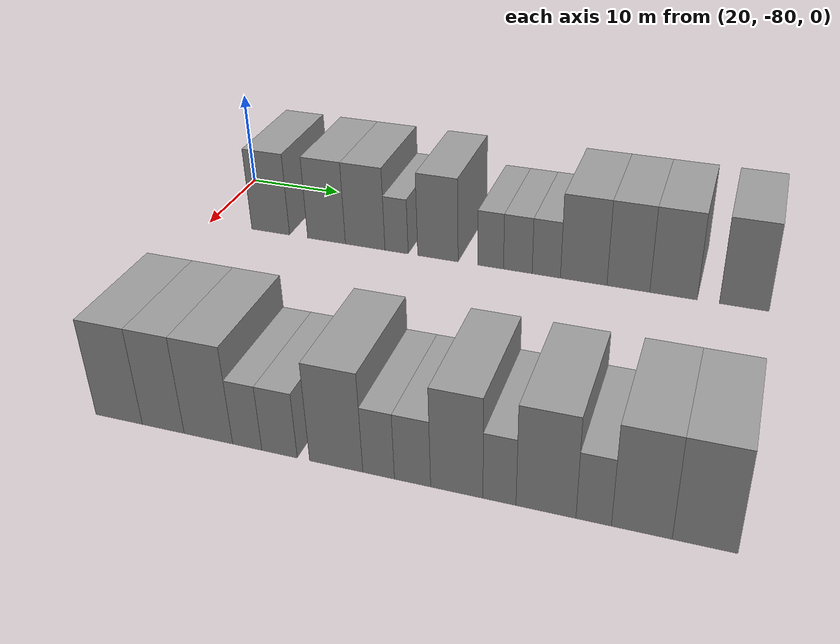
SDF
<sdf version="1.6">
 <world name="default">
  <model name="building_38">
   <static>1</static>
   <pose>25.0000 -73.1028 0 0.000000 0.000000 0.000000</pose>
   <link name="link">
    <pose>0 0 4.50 0 0 0</pose>
    <collision name="collision"><geometry><box><size>10.0000 4.2130 9.0000</size></box></geometry></collision>
    <visual name="visual">
     <cast_shadows>0</cast_shadows>
     <geometry><box><size>10.0000 4.2130 9.0000</size></box></geometry>
     <material>
      <script>
       <uri>model://grey_wall/materials/scripts</uri>
       <uri>model://grey_wall/materials/textures</uri>
       <name>vrc/grey_wall</name>
      </script>
     </material>
    </visual>
   </link>
  </model>
  <model name="building_39">
   <static>1</static>
   <pose>25.0000 -66.9407 0 0.000000 0.000000 0.000000</pose>
   <link name="link">
    <pose>0 0 4.50 0 0 0</pose>
    <collision name="collision"><geometry><box><size>10.0000 4.1111 9.0000</size></box></geometry></collision>
    <visual name="visual">
     <cast_shadows>0</cast_shadows>
     <geometry><box><size>10.0000 4.1111 9.0000</size></box></geometry>
     <material>
      <script>
       <uri>model://grey_wall/materials/scripts</uri>
       <uri>model://grey_wall/materials/textures</uri>
       <name>vrc/grey_wall</name>
      </script>
     </material>
    </visual>
   </link>
  </model>
  <model name="building_40">
   <static>1</static>
   <pose>25.0000 -62.7755 0 0.000000 0.000000 0.000000</pose>
   <link name="link">
    <pose>0 0 4.50 0 0 0</pose>
    <collision name="collision"><geometry><box><size>10.0000 4.2194 9.0000</size></box></geometry></collision>
    <visual name="visual">
     <cast_shadows>0</cast_shadows>
     <geometry><box><size>10.0000 4.2194 9.0000</size></box></geometry>
     <material>
      <script>
       <uri>model://grey_wall/materials/scripts</uri>
       <uri>model://grey_wall/materials/textures</uri>
       <name>vrc/grey_wall</name>
      </script>
     </material>
    </visual>
   </link>
  </model>
  <model name="building_41">
   <static>1</static>
   <pose>25.0000 -59.4509 0 0.000000 0.000000 0.000000</pose>
   <link name="link">
    <pose>0 0 3.00 0 0 0</pose>
    <collision name="collision"><geometry><box><size>10.0000 2.4296 6.0000</size></box></geometry></collision>
    <visual name="visual">
     <cast_shadows>0</cast_shadows>
     <geometry><box><size>10.0000 2.4296 6.0000</size></box></geometry>
     <material>
      <script>
       <uri>model://grey_wall/materials/scripts</uri>
       <uri>model://grey_wall/materials/textures</uri>
       <name>vrc/grey_wall</name>
      </script>
     </material>
    </visual>
   </link>
  </model>
  <model name="building_42">
   <static>1</static>
   <pose>25.0000 -55.1641 0 0.000000 0.000000 0.000000</pose>
   <link name="link">
    <pose>0 0 4.50 0 0 0</pose>
    <collision name="collision"><geometry><box><size>10.0000 4.1441 9.0000</size></box></geometry></collision>
    <visual name="visual">
     <cast_shadows>0</cast_shadows>
     <geometry><box><size>10.0000 4.1441 9.0000</size></box></geometry>
     <material>
      <script>
       <uri>model://grey_wall/materials/scripts</uri>
       <uri>model://grey_wall/materials/textures</uri>
       <name>vrc/grey_wall</name>
      </script>
     </material>
    </visual>
   </link>
  </model>
  <model name="building_43">
   <static>1</static>
   <pose>25.0000 -49.8075 0 0.000000 0.000000 0.000000</pose>
   <link name="link">
    <pose>0 0 3.00 0 0 0</pose>
    <collision name="collision"><geometry><box><size>10.0000 2.5692 6.0000</size></box></geometry></collision>
    <visual name="visual">
     <cast_shadows>0</cast_shadows>
     <geometry><box><size>10.0000 2.5692 6.0000</size></box></geometry>
     <material>
      <script>
       <uri>model://grey_wall/materials/scripts</uri>
       <uri>model://grey_wall/materials/textures</uri>
       <name>vrc/grey_wall</name>
      </script>
     </material>
    </visual>
   </link>
  </model>
  <model name="building_44">
   <static>1</static>
   <pose>25.0000 -47.1094 0 0.000000 0.000000 0.000000</pose>
   <link name="link">
    <pose>0 0 3.00 0 0 0</pose>
    <collision name="collision"><geometry><box><size>10.0000 2.8269 6.0000</size></box></geometry></collision>
    <visual name="visual">
     <cast_shadows>0</cast_shadows>
     <geometry><box><size>10.0000 2.8269 6.0000</size></box></geometry>
     <material>
      <script>
       <uri>model://grey_wall/materials/scripts</uri>
       <uri>model://grey_wall/materials/textures</uri>
       <name>vrc/grey_wall</name>
      </script>
     </material>
    </visual>
   </link>
  </model>
  <model name="building_45">
   <static>1</static>
   <pose>25.0000 -44.3170 0 0.000000 0.000000 0.000000</pose>
   <link name="link">
    <pose>0 0 3.00 0 0 0</pose>
    <collision name="collision"><geometry><box><size>10.0000 2.7580 6.0000</size></box></geometry></collision>
    <visual name="visual">
     <cast_shadows>0</cast_shadows>
     <geometry><box><size>10.0000 2.7580 6.0000</size></box></geometry>
     <material>
      <script>
       <uri>model://grey_wall/materials/scripts</uri>
       <uri>model://grey_wall/materials/textures</uri>
       <name>vrc/grey_wall</name>
      </script>
     </material>
    </visual>
   </link>
  </model>
  <model name="building_46">
   <static>1</static>
   <pose>25.0000 -40.7145 0 0.000000 0.000000 0.000000</pose>
   <link name="link">
    <pose>0 0 4.50 0 0 0</pose>
    <collision name="collision"><geometry><box><size>10.0000 4.4470 9.0000</size></box></geometry></collision>
    <visual name="visual">
     <cast_shadows>0</cast_shadows>
     <geometry><box><size>10.0000 4.4470 9.0000</size></box></geometry>
     <material>
      <script>
       <uri>model://grey_wall/materials/scripts</uri>
       <uri>model://grey_wall/materials/textures</uri>
       <name>vrc/grey_wall</name>
      </script>
     </material>
    </visual>
   </link>
  </model>
  <model name="building_47">
   <static>1</static>
   <pose>25.0000 -36.4850 0 0.000000 0.000000 0.000000</pose>
   <link name="link">
    <pose>0 0 4.50 0 0 0</pose>
    <collision name="collision"><geometry><box><size>10.0000 4.0119 9.0000</size></box></geometry></collision>
    <visual name="visual">
     <cast_shadows>0</cast_shadows>
     <geometry><box><size>10.0000 4.0119 9.0000</size></box></geometry>
     <material>
      <script>
       <uri>model://grey_wall/materials/scripts</uri>
       <uri>model://grey_wall/materials/textures</uri>
       <name>vrc/grey_wall</name>
      </script>
     </material>
    </visual>
   </link>
  </model>
  <model name="building_48">
   <static>1</static>
   <pose>25.0000 -32.3039 0 0.000000 0.000000 0.000000</pose>
   <link name="link">
    <pose>0 0 4.50 0 0 0</pose>
    <collision name="collision"><geometry><box><size>10.0000 4.3503 9.0000</size></box></geometry></collision>
    <visual name="visual">
     <cast_shadows>0</cast_shadows>
     <geometry><box><size>10.0000 4.3503 9.0000</size></box></geometry>
     <material>
      <script>
       <uri>model://grey_wall/materials/scripts</uri>
       <uri>model://grey_wall/materials/textures</uri>
       <name>vrc/grey_wall</name>
      </script>
     </material>
    </visual>
   </link>
  </model>
  <model name="building_49">
   <static>1</static>
   <pose>25.0000 -25.9211 0 0.000000 0.000000 0.000000</pose>
   <link name="link">
    <pose>0 0 4.50 0 0 0</pose>
    <collision name="collision"><geometry><box><size>10.0000 4.4153 9.0000</size></box></geometry></collision>
    <visual name="visual">
     <cast_shadows>0</cast_shadows>
     <geometry><box><size>10.0000 4.4153 9.0000</size></box></geometry>
     <material>
      <script>
       <uri>model://grey_wall/materials/scripts</uri>
       <uri>model://grey_wall/materials/textures</uri>
       <name>vrc/grey_wall</name>
      </script>
     </material>
    </visual>
   </link>
  </model>
  <model name="building_131">
   <static>1</static>
   <pose>55.0000 -71.2461 0 0.000000 0.000000 0.000000</pose>
   <link name="link">
    <pose>0 0 4.50 0 0 0</pose>
    <collision name="collision"><geometry><box><size>10.0000 4.1197 9.0000</size></box></geometry></collision>
    <visual name="visual">
     <cast_shadows>0</cast_shadows>
     <geometry><box><size>10.0000 4.1197 9.0000</size></box></geometry>
     <material>
      <script>
       <uri>model://grey_wall/materials/scripts</uri>
       <uri>model://grey_wall/materials/textures</uri>
       <name>vrc/grey_wall</name>
      </script>
     </material>
    </visual>
   </link>
  </model>
  <model name="building_132">
   <static>1</static>
   <pose>55.0000 -67.3628 0 0.000000 0.000000 0.000000</pose>
   <link name="link">
    <pose>0 0 4.50 0 0 0</pose>
    <collision name="collision"><geometry><box><size>10.0000 3.6469 9.0000</size></box></geometry></collision>
    <visual name="visual">
     <cast_shadows>0</cast_shadows>
     <geometry><box><size>10.0000 3.6469 9.0000</size></box></geometry>
     <material>
      <script>
       <uri>model://grey_wall/materials/scripts</uri>
       <uri>model://grey_wall/materials/textures</uri>
       <name>vrc/grey_wall</name>
      </script>
     </material>
    </visual>
   </link>
  </model>
  <model name="building_133">
   <static>1</static>
   <pose>55.0000 -63.4818 0 0.000000 0.000000 0.000000</pose>
   <link name="link">
    <pose>0 0 4.50 0 0 0</pose>
    <collision name="collision"><geometry><box><size>10.0000 4.1150 9.0000</size></box></geometry></collision>
    <visual name="visual">
     <cast_shadows>0</cast_shadows>
     <geometry><box><size>10.0000 4.1150 9.0000</size></box></geometry>
     <material>
      <script>
       <uri>model://grey_wall/materials/scripts</uri>
       <uri>model://grey_wall/materials/textures</uri>
       <name>vrc/grey_wall</name>
      </script>
     </material>
    </visual>
   </link>
  </model>
  <model name="building_134">
   <static>1</static>
   <pose>55.0000 -60.2081 0 0.000000 0.000000 0.000000</pose>
   <link name="link">
    <pose>0 0 3.00 0 0 0</pose>
    <collision name="collision"><geometry><box><size>10.0000 2.4324 6.0000</size></box></geometry></collision>
    <visual name="visual">
     <cast_shadows>0</cast_shadows>
     <geometry><box><size>10.0000 2.4324 6.0000</size></box></geometry>
     <material>
      <script>
       <uri>model://grey_wall/materials/scripts</uri>
       <uri>model://grey_wall/materials/textures</uri>
       <name>vrc/grey_wall</name>
      </script>
     </material>
    </visual>
   </link>
  </model>
  <model name="building_135">
   <static>1</static>
   <pose>55.0000 -57.5445 0 0.000000 0.000000 0.000000</pose>
   <link name="link">
    <pose>0 0 3.00 0 0 0</pose>
    <collision name="collision"><geometry><box><size>10.0000 2.8948 6.0000</size></box></geometry></collision>
    <visual name="visual">
     <cast_shadows>0</cast_shadows>
     <geometry><box><size>10.0000 2.8948 6.0000</size></box></geometry>
     <material>
      <script>
       <uri>model://grey_wall/materials/scripts</uri>
       <uri>model://grey_wall/materials/textures</uri>
       <name>vrc/grey_wall</name>
      </script>
     </material>
    </visual>
   </link>
  </model>
  <model name="building_136">
   <static>1</static>
   <pose>55.0000 -52.9820 0 0.000000 0.000000 0.000000</pose>
   <link name="link">
    <pose>0 0 4.50 0 0 0</pose>
    <collision name="collision"><geometry><box><size>10.0000 4.2301 9.0000</size></box></geometry></collision>
    <visual name="visual">
     <cast_shadows>0</cast_shadows>
     <geometry><box><size>10.0000 4.2301 9.0000</size></box></geometry>
     <material>
      <script>
       <uri>model://grey_wall/materials/scripts</uri>
       <uri>model://grey_wall/materials/textures</uri>
       <name>vrc/grey_wall</name>
      </script>
     </material>
    </visual>
   </link>
  </model>
  <model name="building_137">
   <static>1</static>
   <pose>55.0000 -49.6366 0 0.000000 0.000000 0.000000</pose>
   <link name="link">
    <pose>0 0 3.00 0 0 0</pose>
    <collision name="collision"><geometry><box><size>10.0000 2.4607 6.0000</size></box></geometry></collision>
    <visual name="visual">
     <cast_shadows>0</cast_shadows>
     <geometry><box><size>10.0000 2.4607 6.0000</size></box></geometry>
     <material>
      <script>
       <uri>model://grey_wall/materials/scripts</uri>
       <uri>model://grey_wall/materials/textures</uri>
       <name>vrc/grey_wall</name>
      </script>
     </material>
    </visual>
   </link>
  </model>
  <model name="building_138">
   <static>1</static>
   <pose>55.0000 -47.0267 0 0.000000 0.000000 0.000000</pose>
   <link name="link">
    <pose>0 0 3.00 0 0 0</pose>
    <collision name="collision"><geometry><box><size>10.0000 2.7591 6.0000</size></box></geometry></collision>
    <visual name="visual">
     <cast_shadows>0</cast_shadows>
     <geometry><box><size>10.0000 2.7591 6.0000</size></box></geometry>
     <material>
      <script>
       <uri>model://grey_wall/materials/scripts</uri>
       <uri>model://grey_wall/materials/textures</uri>
       <name>vrc/grey_wall</name>
      </script>
     </material>
    </visual>
   </link>
  </model>
  <model name="building_139">
   <static>1</static>
   <pose>55.0000 -43.6914 0 0.000000 0.000000 0.000000</pose>
   <link name="link">
    <pose>0 0 4.50 0 0 0</pose>
    <collision name="collision"><geometry><box><size>10.0000 3.9114 9.0000</size></box></geometry></collision>
    <visual name="visual">
     <cast_shadows>0</cast_shadows>
     <geometry><box><size>10.0000 3.9114 9.0000</size></box></geometry>
     <material>
      <script>
       <uri>model://grey_wall/materials/scripts</uri>
       <uri>model://grey_wall/materials/textures</uri>
       <name>vrc/grey_wall</name>
      </script>
     </material>
    </visual>
   </link>
  </model>
  <model name="building_140">
   <static>1</static>
   <pose>55.0000 -40.5246 0 0.000000 0.000000 0.000000</pose>
   <link name="link">
    <pose>0 0 3.00 0 0 0</pose>
    <collision name="collision"><geometry><box><size>10.0000 2.4222 6.0000</size></box></geometry></collision>
    <visual name="visual">
     <cast_shadows>0</cast_shadows>
     <geometry><box><size>10.0000 2.4222 6.0000</size></box></geometry>
     <material>
      <script>
       <uri>model://grey_wall/materials/scripts</uri>
       <uri>model://grey_wall/materials/textures</uri>
       <name>vrc/grey_wall</name>
      </script>
     </material>
    </visual>
   </link>
  </model>
  <model name="building_141">
   <static>1</static>
   <pose>55.0000 -37.1706 0 0.000000 0.000000 0.000000</pose>
   <link name="link">
    <pose>0 0 4.50 0 0 0</pose>
    <collision name="collision"><geometry><box><size>10.0000 4.2858 9.0000</size></box></geometry></collision>
    <visual name="visual">
     <cast_shadows>0</cast_shadows>
     <geometry><box><size>10.0000 4.2858 9.0000</size></box></geometry>
     <material>
      <script>
       <uri>model://grey_wall/materials/scripts</uri>
       <uri>model://grey_wall/materials/textures</uri>
       <name>vrc/grey_wall</name>
      </script>
     </material>
    </visual>
   </link>
  </model>
  <model name="building_142">
   <static>1</static>
   <pose>55.0000 -33.7890 0 0.000000 0.000000 0.000000</pose>
   <link name="link">
    <pose>0 0 3.00 0 0 0</pose>
    <collision name="collision"><geometry><box><size>10.0000 2.4775 6.0000</size></box></geometry></collision>
    <visual name="visual">
     <cast_shadows>0</cast_shadows>
     <geometry><box><size>10.0000 2.4775 6.0000</size></box></geometry>
     <material>
      <script>
       <uri>model://grey_wall/materials/scripts</uri>
       <uri>model://grey_wall/materials/textures</uri>
       <name>vrc/grey_wall</name>
      </script>
     </material>
    </visual>
   </link>
  </model>
  <model name="building_143">
   <static>1</static>
   <pose>55.0000 -30.4707 0 0.000000 0.000000 0.000000</pose>
   <link name="link">
    <pose>0 0 4.50 0 0 0</pose>
    <collision name="collision"><geometry><box><size>10.0000 4.1591 9.0000</size></box></geometry></collision>
    <visual name="visual">
     <cast_shadows>0</cast_shadows>
     <geometry><box><size>10.0000 4.1591 9.0000</size></box></geometry>
     <material>
      <script>
       <uri>model://grey_wall/materials/scripts</uri>
       <uri>model://grey_wall/materials/textures</uri>
       <name>vrc/grey_wall</name>
      </script>
     </material>
    </visual>
   </link>
  </model>
  <model name="building_144">
   <static>1</static>
   <pose>55.0000 -26.2092 0 0.000000 0.000000 0.000000</pose>
   <link name="link">
    <pose>0 0 4.50 0 0 0</pose>
    <collision name="collision"><geometry><box><size>10.0000 4.3640 9.0000</size></box></geometry></collision>
    <visual name="visual">
     <cast_shadows>0</cast_shadows>
     <geometry><box><size>10.0000 4.3640 9.0000</size></box></geometry>
     <material>
      <script>
       <uri>model://grey_wall/materials/scripts</uri>
       <uri>model://grey_wall/materials/textures</uri>
       <name>vrc/grey_wall</name>
      </script>
     </material>
    </visual>
   </link>
  </model>
 </world>
</sdf>
